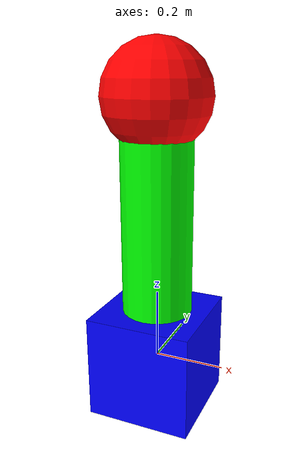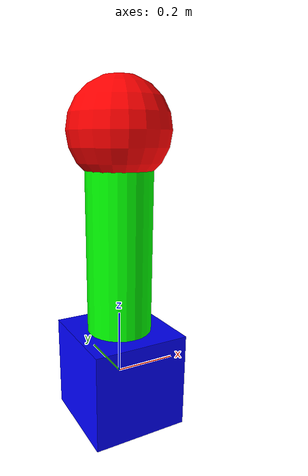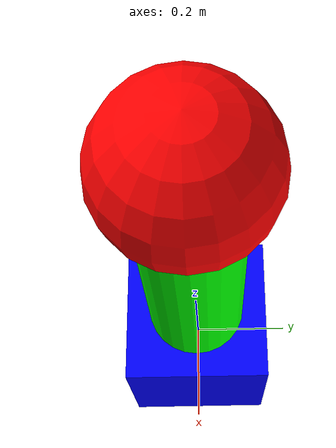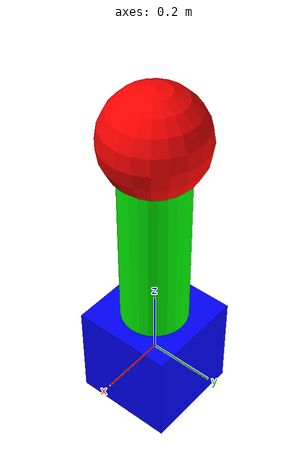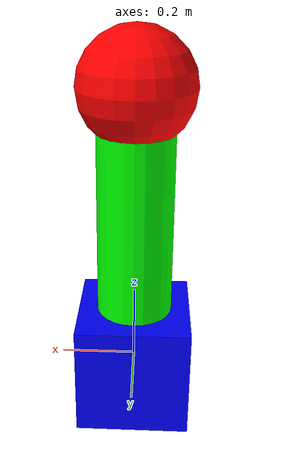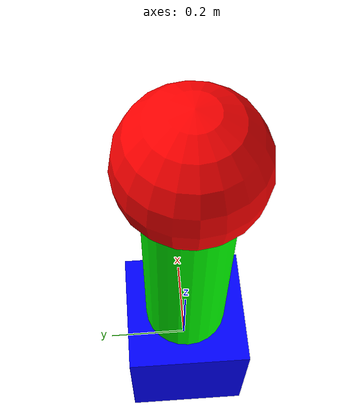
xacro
<?xml version="1.0"?>
<robot name="basic_shapes_robot" xmlns:xacro="http://ros.org/wiki/xacro">

  <!-- Define materials -->
  <xacro:property name="blue" value="0 0 1 1"/>
  <xacro:property name="green" value="0 1 0 1"/>
  <xacro:property name="red" value="1 0 0 1"/>

  <!-- Cube dimensions -->
  <xacro:property name="cube_size" value="0.3"/>

  <!-- Cylinder dimensions -->
  <xacro:property name="cylinder_radius" value="0.1"/>
  <xacro:property name="cylinder_length" value="0.5"/>

  <!-- Sphere dimensions -->
  <xacro:property name="sphere_radius" value="0.15"/>

  <!-- Cube Link -->
  <link name="cube_link">
    <visual>
      <geometry>
        <box size="${cube_size} ${cube_size} ${cube_size}"/>
      </geometry>
      <material name="blue">
        <color rgba="${blue}"/>
      </material>
    </visual>
  </link>

  <!-- Cylinder Link -->
  <link name="cylinder_link">
    <visual>
      <geometry>
        <cylinder radius="${cylinder_radius}" length="${cylinder_length}"/>
      </geometry>
      <material name="green">
        <color rgba="${green}"/>
      </material>
    </visual>
  </link>

  <!-- Sphere Link -->
  <link name="sphere_link">
    <visual>
      <geometry>
        <sphere radius="${sphere_radius}"/>
      </geometry>
      <material name="red">
        <color rgba="${red}"/>
      </material>
    </visual>
  </link>

  <!-- Joints -->

  <!-- Cylinder on top of cube -->
  <joint name="cube_to_cylinder" type="fixed">
    <parent link="cube_link"/>
    <child link="cylinder_link"/>
    <origin xyz="0 0 0.4" rpy="0 0 0"/>
  </joint>

  <!-- Sphere on top of cylinder -->
  <joint name="cylinder_to_sphere" type="fixed">
    <parent link="cylinder_link"/>
    <child link="sphere_link"/>
    <origin xyz="0 0 0.35" rpy="0 0 0"/>
  </joint>

</robot>
